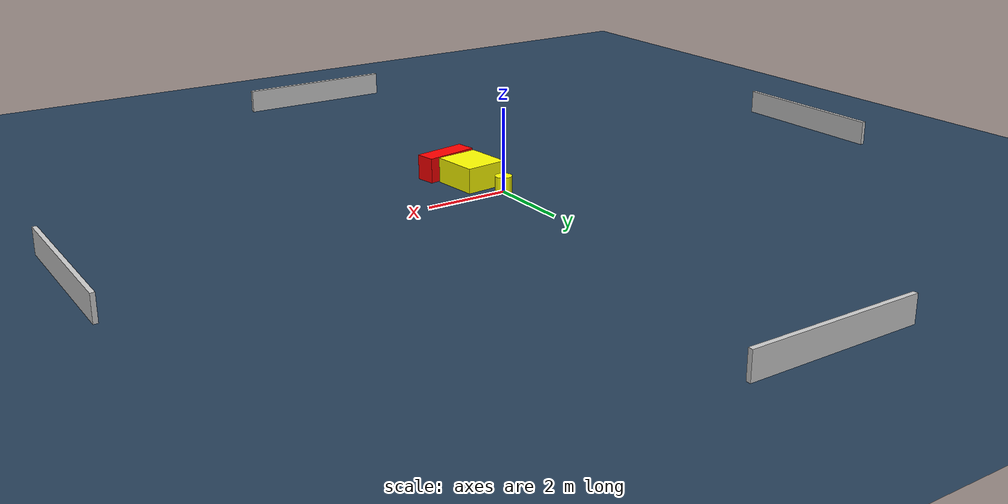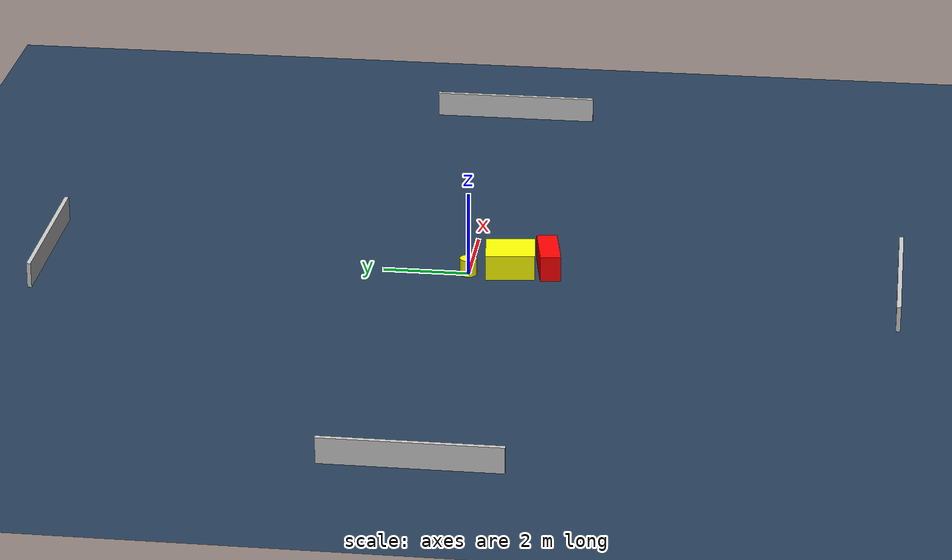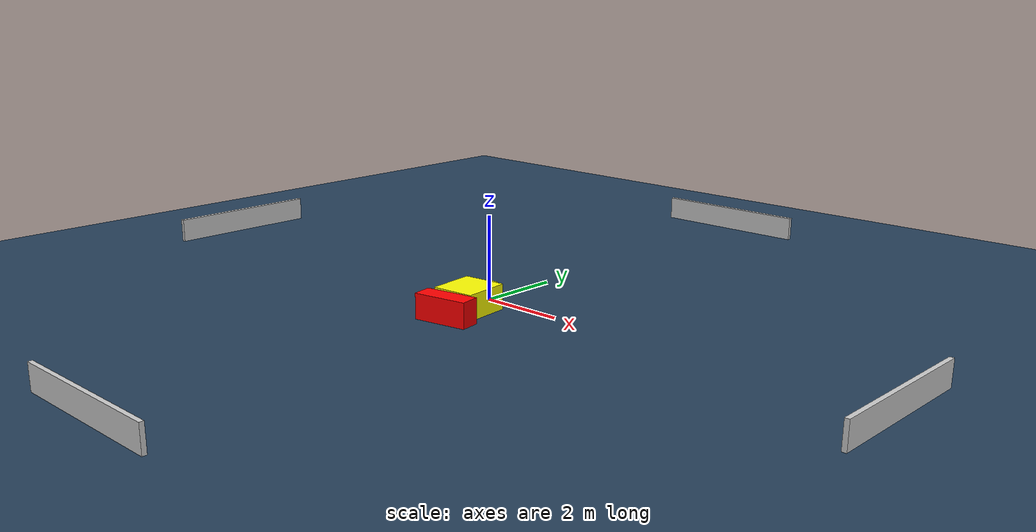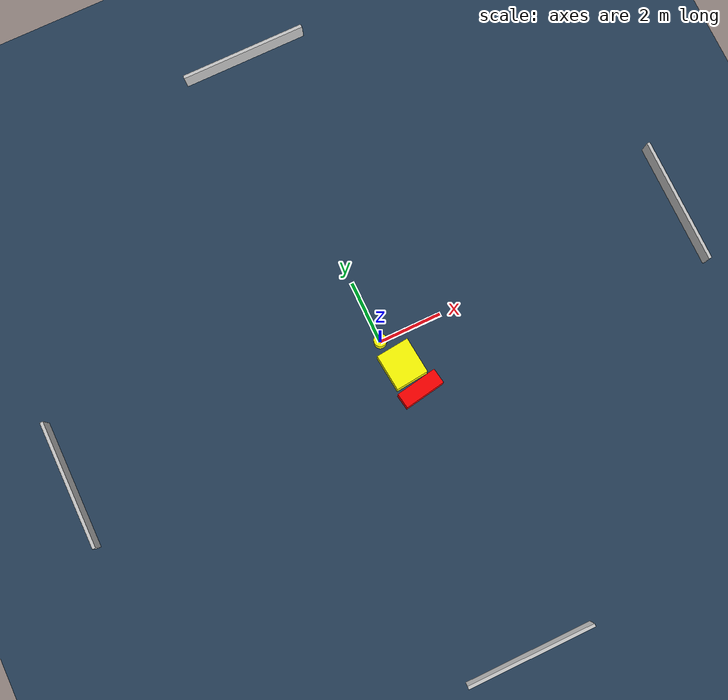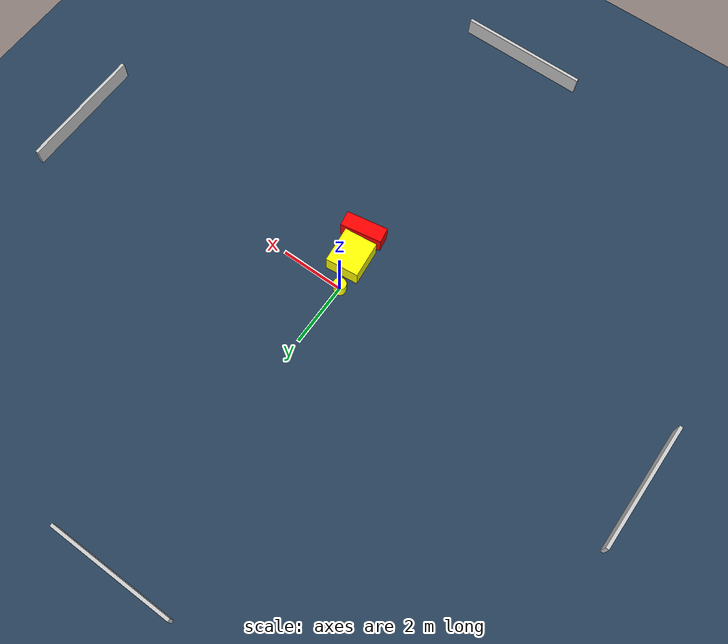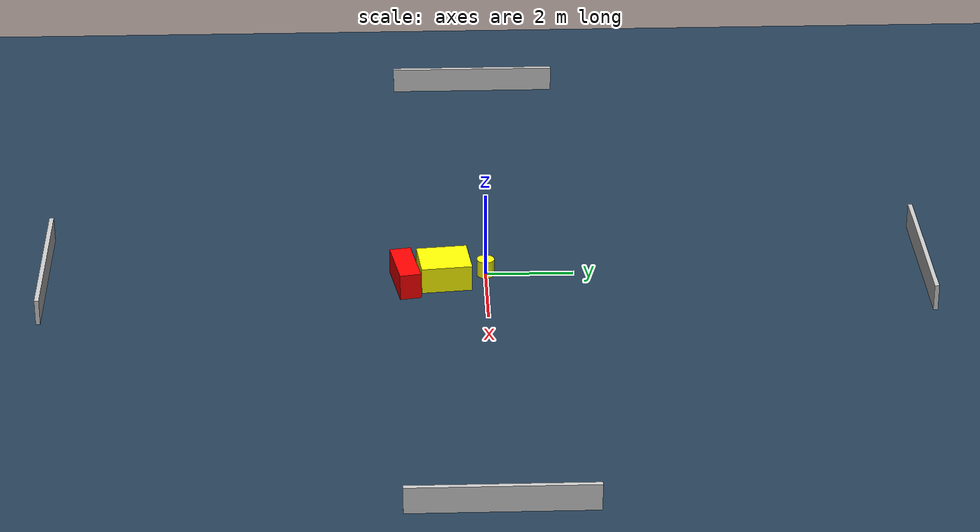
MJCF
<?xml version="1.0" ?>
<mujoco model="generated_environment">
  <option timestep="0.01" integrator="RK4" cone="elliptic"/>
  <default>
    <geom density="1"/>
  </default>
  <asset>
    <texture builtin="gradient" height="3072" name="skybox" rgb1="0.3 0.5 0.7" rgb2="0 0 0" type="skybox" width="512"/>
    <texture builtin="checker" height="300" name="groundplane" rgb1="0.2 0.3 0.4" rgb2="0.1 0.2 0.3" type="2d" width="300"/>
    <material name="groundplane" reflectance="0.2" texrepeat="5 5" texture="groundplane"/>
  </asset>
  <worldbody>
    <light dir="0 0 -1" directional="true" pos="0 0 1.5"/>
    <geom condim="3" friction="0.5 0.005 0.001" material="groundplane" name="floor" pos="0 0 0" size="0 0 0.05" type="plane"/>
    <body name="walls">
      <geom name="wall_1" condim="4" pos="-10.0 0.0 0.3" rgba="0.800000011920929 0.800000011920929 0.800000011920929 1.0" size="0.05 2.0 0.3" type="box"/>
      <geom name="wall_2" condim="4" pos="10.0 0.0 0.3" rgba="0.800000011920929 0.800000011920929 0.800000011920929 1.0" size="0.05 2.0 0.3" type="box"/>
      <geom name="wall_3" condim="4" pos="0.0 -10.0 0.3" rgba="0.800000011920929 0.800000011920929 0.800000011920929 1.0" size="2.0 0.05 0.3" type="box"/>
      <geom name="wall_4" condim="4" pos="0.0 10.0 0.3" rgba="0.800000011920929 0.800000011920929 0.800000011920929 1.0" size="2.0 0.05 0.3" type="box"/>
    </body>
    <body name="robot">
      <joint name="joint_x" type="slide" pos="0 0 0" axis="1 0 0"/>
      <joint name="joint_y" type="slide" pos="0 0 0" axis="0 1 0"/>
      <geom name="robot" type="cylinder" pos="0.0 0.0 0.2" size="0.2 0.2 0.0" mass="5.0" friction="1.0 0.005 0.0001" condim="4" rgba="1.0 1.0 0.0 1.0"/>
    </body>
    <body name="obstacle_1_movable">
      <geom name="obstacle_1_movable" condim="4" pos="0.27318829395202376 -0.9488537391710411 0.3" euler="0 0 275.94538913508813" friction="0.0 0.005 0.001" rgba="1.0 1.0 0.0 1.0" size="0.5752246886305195 0.5191865372019142 0.3" type="box" mass="0.1"/>
      <joint type="free"/>
    </body>
    <body name="obstacle_2_static">
      <geom name="obstacle_2_static" condim="4" pos="0.4495203788992434 -1.8318592390748412 0.3" euler="0 0 99.83579809643038" friction="0.0 0.005 0.001" rgba="1.0 0.0 0.0 1.0" size="0.24068374450472924 0.6542157082686861 0.3" type="box"/>
    </body>
  </worldbody>
  <actuator>
    <motor name="actuator_x" joint="joint_x" gear="1" ctrlrange="-1 1"/>
    <motor name="actuator_y" joint="joint_y" gear="1" ctrlrange="-1 1"/>
  </actuator>
</mujoco>
